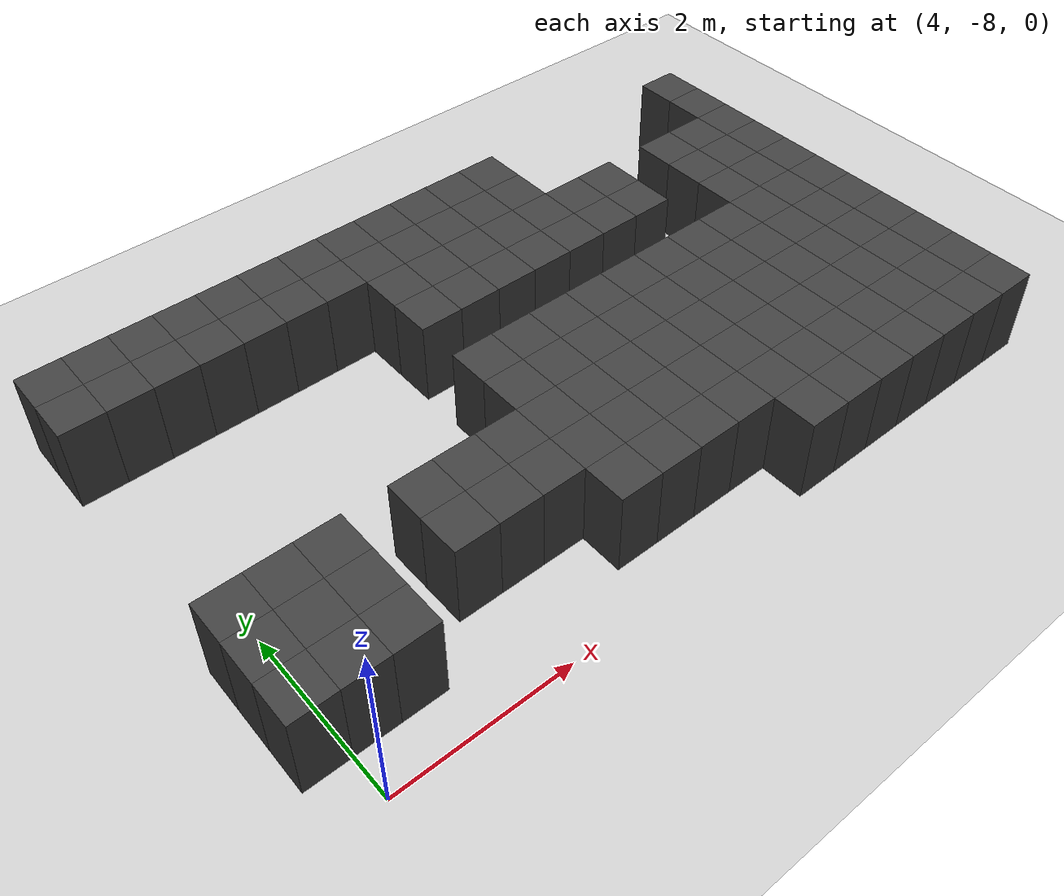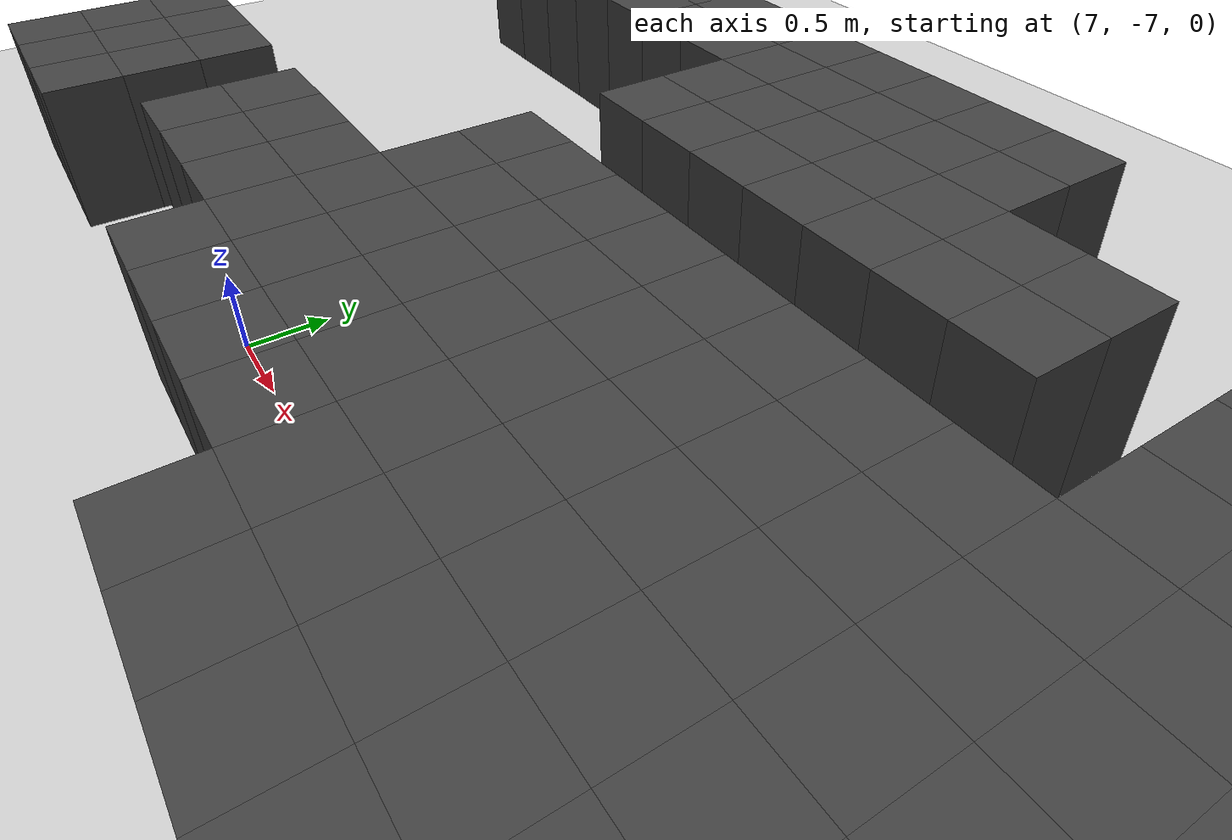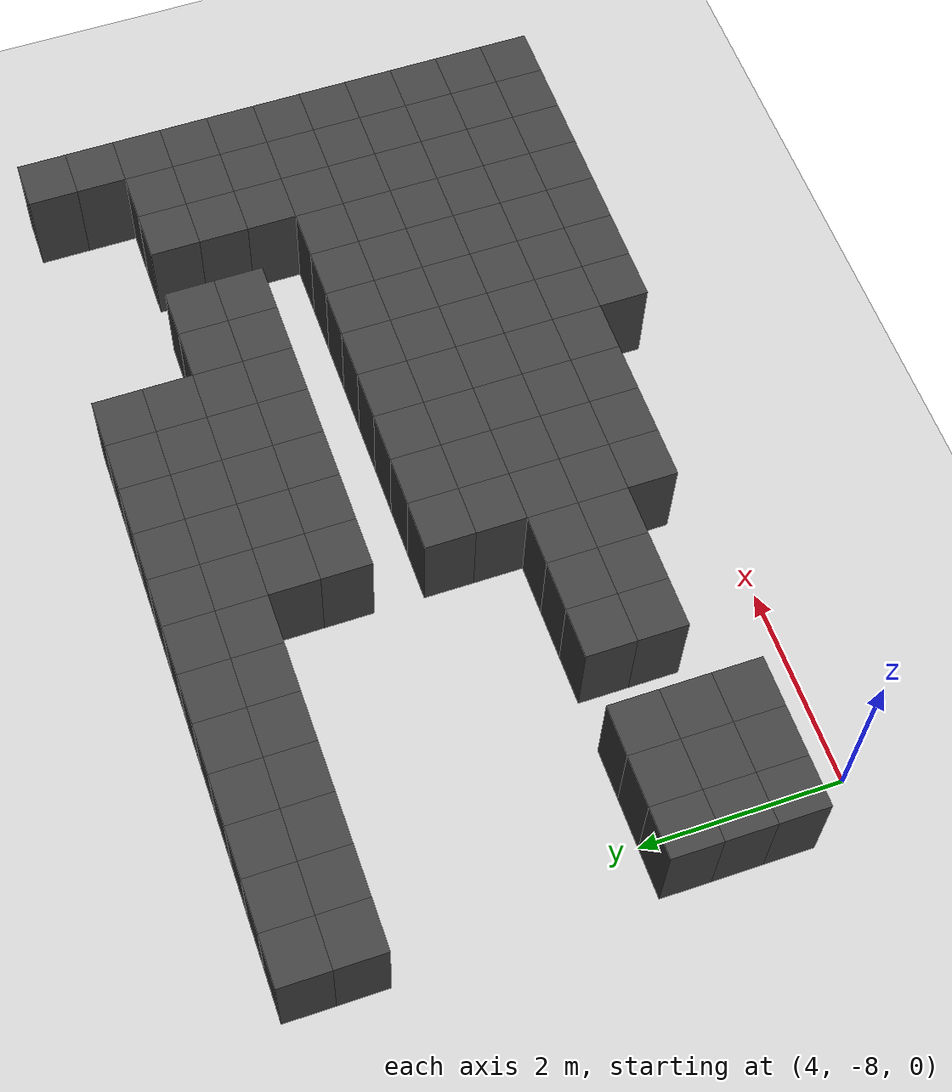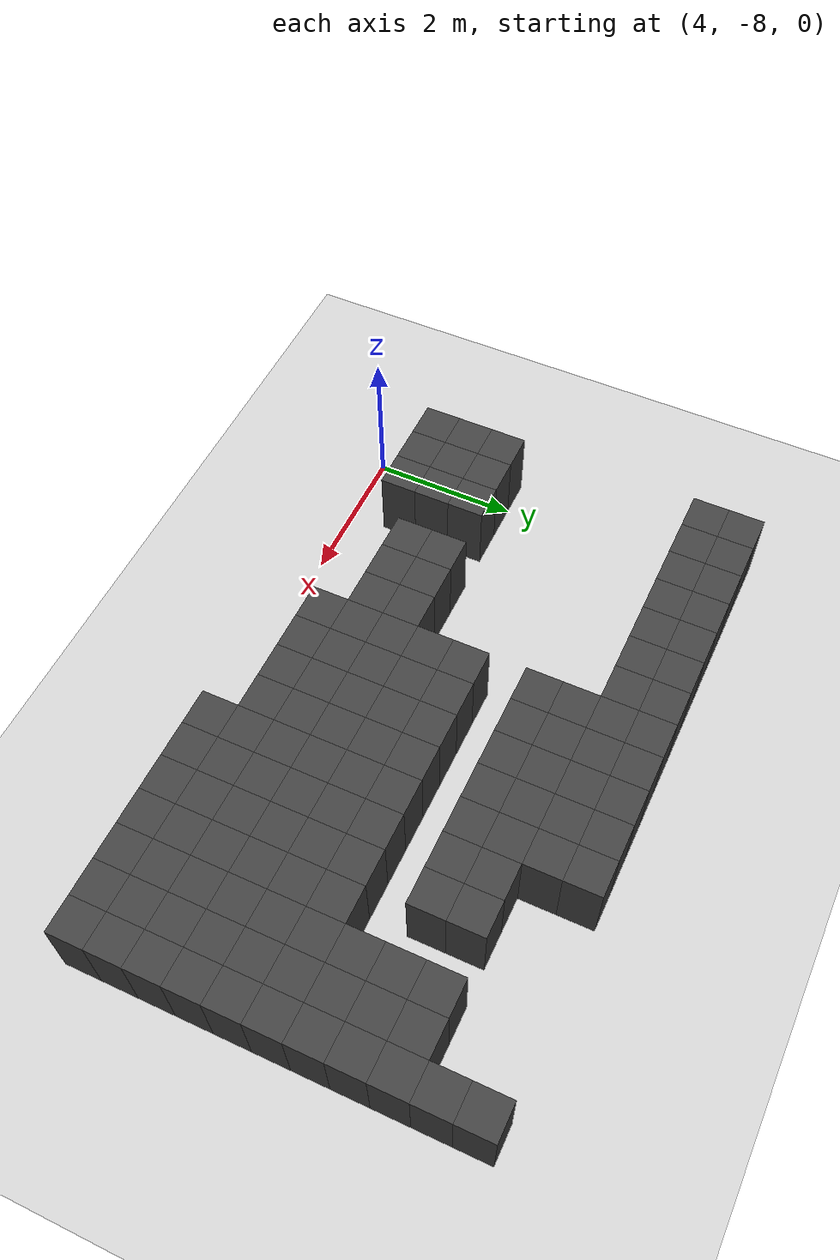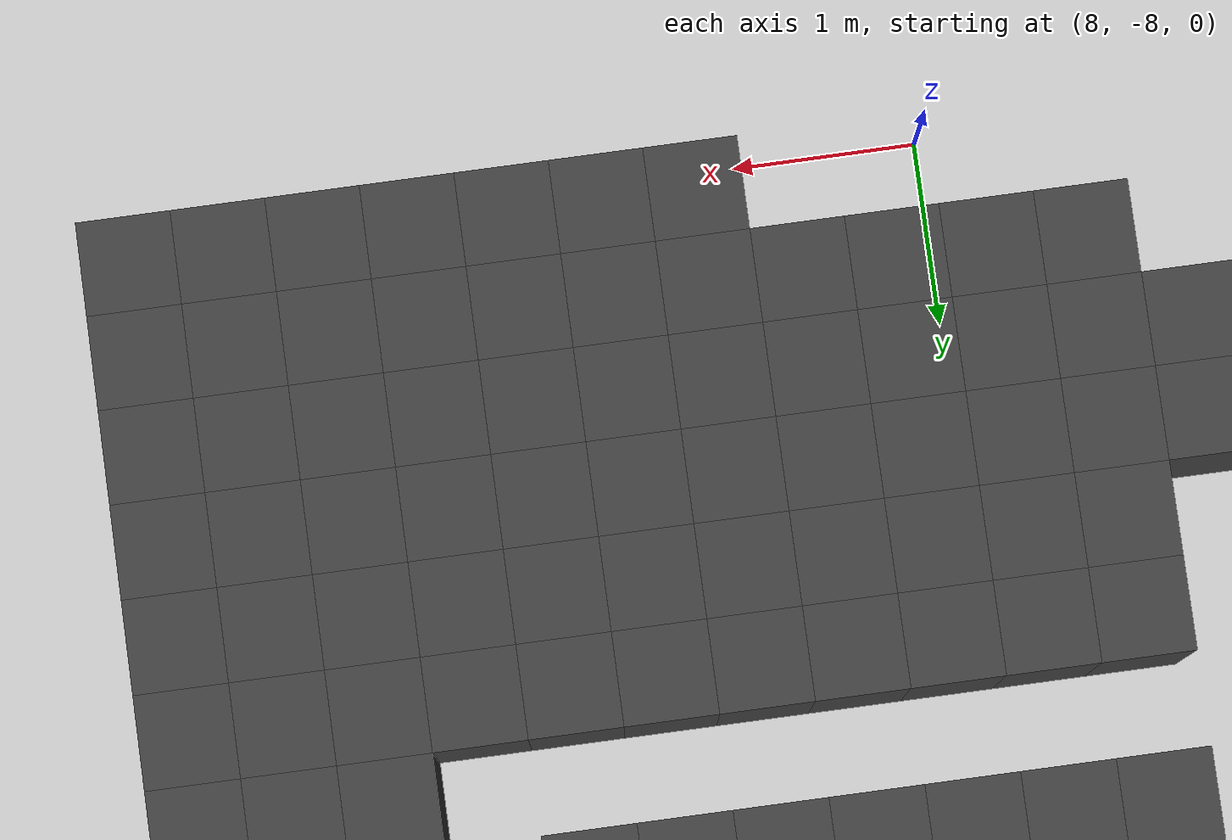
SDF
<sdf version="1.7">
 <world name="map_14190">
  <model name="ground_plane">
   <static>true</static>
   <link name="link">
    <collision name="collision">
     <geometry><plane><normal>0 0 1</normal><size>200 200</size></plane></geometry>
    </collision>
    <visual name="visual">
     <geometry><plane><normal>0 0 1</normal><size>200 200</size></plane></geometry>
     <material><ambient>0.8 0.8 0.8 1</ambient><diffuse>0.8 0.8 0.8 1</diffuse></material>
    </visual>
   </link>
  </model>
  <model name="maze_environment">
   <static>true</static>
   <link name="wall_1069">
    <pose>3.750 -2.750 0.500 0 0 0</pose>
    <collision name="col"><geometry><box><size>0.5 0.5 1.0</size></box></geometry></collision>
    <visual name="vis">
     <geometry><box><size>0.5 0.5 1.0</size></box></geometry>
     <material><ambient>0.15 0.15 0.15 1</ambient><diffuse>0.25 0.25 0.25 1</diffuse></material>
    </visual>
   </link>
   <link name="wall_1070">
    <pose>4.250 -2.750 0.500 0 0 0</pose>
    <collision name="col"><geometry><box><size>0.5 0.5 1.0</size></box></geometry></collision>
    <visual name="vis">
     <geometry><box><size>0.5 0.5 1.0</size></box></geometry>
     <material><ambient>0.15 0.15 0.15 1</ambient><diffuse>0.25 0.25 0.25 1</diffuse></material>
    </visual>
   </link>
   <link name="wall_1071">
    <pose>4.750 -2.750 0.500 0 0 0</pose>
    <collision name="col"><geometry><box><size>0.5 0.5 1.0</size></box></geometry></collision>
    <visual name="vis">
     <geometry><box><size>0.5 0.5 1.0</size></box></geometry>
     <material><ambient>0.15 0.15 0.15 1</ambient><diffuse>0.25 0.25 0.25 1</diffuse></material>
    </visual>
   </link>
   <link name="wall_1072">
    <pose>5.250 -2.750 0.500 0 0 0</pose>
    <collision name="col"><geometry><box><size>0.5 0.5 1.0</size></box></geometry></collision>
    <visual name="vis">
     <geometry><box><size>0.5 0.5 1.0</size></box></geometry>
     <material><ambient>0.15 0.15 0.15 1</ambient><diffuse>0.25 0.25 0.25 1</diffuse></material>
    </visual>
   </link>
   <link name="wall_1073">
    <pose>5.750 -2.750 0.500 0 0 0</pose>
    <collision name="col"><geometry><box><size>0.5 0.5 1.0</size></box></geometry></collision>
    <visual name="vis">
     <geometry><box><size>0.5 0.5 1.0</size></box></geometry>
     <material><ambient>0.15 0.15 0.15 1</ambient><diffuse>0.25 0.25 0.25 1</diffuse></material>
    </visual>
   </link>
   <link name="wall_1074">
    <pose>6.250 -2.750 0.500 0 0 0</pose>
    <collision name="col"><geometry><box><size>0.5 0.5 1.0</size></box></geometry></collision>
    <visual name="vis">
     <geometry><box><size>0.5 0.5 1.0</size></box></geometry>
     <material><ambient>0.15 0.15 0.15 1</ambient><diffuse>0.25 0.25 0.25 1</diffuse></material>
    </visual>
   </link>
   <link name="wall_1075">
    <pose>6.750 -2.750 0.500 0 0 0</pose>
    <collision name="col"><geometry><box><size>0.5 0.5 1.0</size></box></geometry></collision>
    <visual name="vis">
     <geometry><box><size>0.5 0.5 1.0</size></box></geometry>
     <material><ambient>0.15 0.15 0.15 1</ambient><diffuse>0.25 0.25 0.25 1</diffuse></material>
    </visual>
   </link>
   <link name="wall_1076">
    <pose>7.250 -2.750 0.500 0 0 0</pose>
    <collision name="col"><geometry><box><size>0.5 0.5 1.0</size></box></geometry></collision>
    <visual name="vis">
     <geometry><box><size>0.5 0.5 1.0</size></box></geometry>
     <material><ambient>0.15 0.15 0.15 1</ambient><diffuse>0.25 0.25 0.25 1</diffuse></material>
    </visual>
   </link>
   <link name="wall_1077">
    <pose>7.750 -2.750 0.500 0 0 0</pose>
    <collision name="col"><geometry><box><size>0.5 0.5 1.0</size></box></geometry></collision>
    <visual name="vis">
     <geometry><box><size>0.5 0.5 1.0</size></box></geometry>
     <material><ambient>0.15 0.15 0.15 1</ambient><diffuse>0.25 0.25 0.25 1</diffuse></material>
    </visual>
   </link>
   <link name="wall_1078">
    <pose>8.250 -2.750 0.500 0 0 0</pose>
    <collision name="col"><geometry><box><size>0.5 0.5 1.0</size></box></geometry></collision>
    <visual name="vis">
     <geometry><box><size>0.5 0.5 1.0</size></box></geometry>
     <material><ambient>0.15 0.15 0.15 1</ambient><diffuse>0.25 0.25 0.25 1</diffuse></material>
    </visual>
   </link>
   <link name="wall_1079">
    <pose>8.750 -2.750 0.500 0 0 0</pose>
    <collision name="col"><geometry><box><size>0.5 0.5 1.0</size></box></geometry></collision>
    <visual name="vis">
     <geometry><box><size>0.5 0.5 1.0</size></box></geometry>
     <material><ambient>0.15 0.15 0.15 1</ambient><diffuse>0.25 0.25 0.25 1</diffuse></material>
    </visual>
   </link>
   <link name="wall_1080">
    <pose>9.250 -2.750 0.500 0 0 0</pose>
    <collision name="col"><geometry><box><size>0.5 0.5 1.0</size></box></geometry></collision>
    <visual name="vis">
     <geometry><box><size>0.5 0.5 1.0</size></box></geometry>
     <material><ambient>0.15 0.15 0.15 1</ambient><diffuse>0.25 0.25 0.25 1</diffuse></material>
    </visual>
   </link>
   <link name="wall_1081">
    <pose>12.250 -2.750 0.500 0 0 0</pose>
    <collision name="col"><geometry><box><size>0.5 0.5 1.0</size></box></geometry></collision>
    <visual name="vis">
     <geometry><box><size>0.5 0.5 1.0</size></box></geometry>
     <material><ambient>0.15 0.15 0.15 1</ambient><diffuse>0.25 0.25 0.25 1</diffuse></material>
    </visual>
   </link>
   <link name="wall_1103">
    <pose>3.750 -3.250 0.500 0 0 0</pose>
    <collision name="col"><geometry><box><size>0.5 0.5 1.0</size></box></geometry></collision>
    <visual name="vis">
     <geometry><box><size>0.5 0.5 1.0</size></box></geometry>
     <material><ambient>0.15 0.15 0.15 1</ambient><diffuse>0.25 0.25 0.25 1</diffuse></material>
    </visual>
   </link>
   <link name="wall_1104">
    <pose>4.250 -3.250 0.500 0 0 0</pose>
    <collision name="col"><geometry><box><size>0.5 0.5 1.0</size></box></geometry></collision>
    <visual name="vis">
     <geometry><box><size>0.5 0.5 1.0</size></box></geometry>
     <material><ambient>0.15 0.15 0.15 1</ambient><diffuse>0.25 0.25 0.25 1</diffuse></material>
    </visual>
   </link>
   <link name="wall_1105">
    <pose>4.750 -3.250 0.500 0 0 0</pose>
    <collision name="col"><geometry><box><size>0.5 0.5 1.0</size></box></geometry></collision>
    <visual name="vis">
     <geometry><box><size>0.5 0.5 1.0</size></box></geometry>
     <material><ambient>0.15 0.15 0.15 1</ambient><diffuse>0.25 0.25 0.25 1</diffuse></material>
    </visual>
   </link>
   <link name="wall_1106">
    <pose>5.250 -3.250 0.500 0 0 0</pose>
    <collision name="col"><geometry><box><size>0.5 0.5 1.0</size></box></geometry></collision>
    <visual name="vis">
     <geometry><box><size>0.5 0.5 1.0</size></box></geometry>
     <material><ambient>0.15 0.15 0.15 1</ambient><diffuse>0.25 0.25 0.25 1</diffuse></material>
    </visual>
   </link>
   <link name="wall_1107">
    <pose>5.750 -3.250 0.500 0 0 0</pose>
    <collision name="col"><geometry><box><size>0.5 0.5 1.0</size></box></geometry></collision>
    <visual name="vis">
     <geometry><box><size>0.5 0.5 1.0</size></box></geometry>
     <material><ambient>0.15 0.15 0.15 1</ambient><diffuse>0.25 0.25 0.25 1</diffuse></material>
    </visual>
   </link>
   <link name="wall_1108">
    <pose>6.250 -3.250 0.500 0 0 0</pose>
    <collision name="col"><geometry><box><size>0.5 0.5 1.0</size></box></geometry></collision>
    <visual name="vis">
     <geometry><box><size>0.5 0.5 1.0</size></box></geometry>
     <material><ambient>0.15 0.15 0.15 1</ambient><diffuse>0.25 0.25 0.25 1</diffuse></material>
    </visual>
   </link>
   <link name="wall_1109">
    <pose>6.750 -3.250 0.500 0 0 0</pose>
    <collision name="col"><geometry><box><size>0.5 0.5 1.0</size></box></geometry></collision>
    <visual name="vis">
     <geometry><box><size>0.5 0.5 1.0</size></box></geometry>
     <material><ambient>0.15 0.15 0.15 1</ambient><diffuse>0.25 0.25 0.25 1</diffuse></material>
    </visual>
   </link>
   <link name="wall_1110">
    <pose>7.250 -3.250 0.500 0 0 0</pose>
    <collision name="col"><geometry><box><size>0.5 0.5 1.0</size></box></geometry></collision>
    <visual name="vis">
     <geometry><box><size>0.5 0.5 1.0</size></box></geometry>
     <material><ambient>0.15 0.15 0.15 1</ambient><diffuse>0.25 0.25 0.25 1</diffuse></material>
    </visual>
   </link>
   <link name="wall_1111">
    <pose>7.750 -3.250 0.500 0 0 0</pose>
    <collision name="col"><geometry><box><size>0.5 0.5 1.0</size></box></geometry></collision>
    <visual name="vis">
     <geometry><box><size>0.5 0.5 1.0</size></box></geometry>
     <material><ambient>0.15 0.15 0.15 1</ambient><diffuse>0.25 0.25 0.25 1</diffuse></material>
    </visual>
   </link>
   <link name="wall_1112">
    <pose>8.250 -3.250 0.500 0 0 0</pose>
    <collision name="col"><geometry><box><size>0.5 0.5 1.0</size></box></geometry></collision>
    <visual name="vis">
     <geometry><box><size>0.5 0.5 1.0</size></box></geometry>
     <material><ambient>0.15 0.15 0.15 1</ambient><diffuse>0.25 0.25 0.25 1</diffuse></material>
    </visual>
   </link>
   <link name="wall_1113">
    <pose>8.750 -3.250 0.500 0 0 0</pose>
    <collision name="col"><geometry><box><size>0.5 0.5 1.0</size></box></geometry></collision>
    <visual name="vis">
     <geometry><box><size>0.5 0.5 1.0</size></box></geometry>
     <material><ambient>0.15 0.15 0.15 1</ambient><diffuse>0.25 0.25 0.25 1</diffuse></material>
    </visual>
   </link>
   <link name="wall_1114">
    <pose>9.250 -3.250 0.500 0 0 0</pose>
    <collision name="col"><geometry><box><size>0.5 0.5 1.0</size></box></geometry></collision>
    <visual name="vis">
     <geometry><box><size>0.5 0.5 1.0</size></box></geometry>
     <material><ambient>0.15 0.15 0.15 1</ambient><diffuse>0.25 0.25 0.25 1</diffuse></material>
    </visual>
   </link>
   <link name="wall_1115">
    <pose>12.250 -3.250 0.500 0 0 0</pose>
    <collision name="col"><geometry><box><size>0.5 0.5 1.0</size></box></geometry></collision>
    <visual name="vis">
     <geometry><box><size>0.5 0.5 1.0</size></box></geometry>
     <material><ambient>0.15 0.15 0.15 1</ambient><diffuse>0.25 0.25 0.25 1</diffuse></material>
    </visual>
   </link>
   <link name="wall_1141">
    <pose>7.250 -3.750 0.500 0 0 0</pose>
    <collision name="col"><geometry><box><size>0.5 0.5 1.0</size></box></geometry></collision>
    <visual name="vis">
     <geometry><box><size>0.5 0.5 1.0</size></box></geometry>
     <material><ambient>0.15 0.15 0.15 1</ambient><diffuse>0.25 0.25 0.25 1</diffuse></material>
    </visual>
   </link>
   <link name="wall_1142">
    <pose>7.750 -3.750 0.500 0 0 0</pose>
    <collision name="col"><geometry><box><size>0.5 0.5 1.0</size></box></geometry></collision>
    <visual name="vis">
     <geometry><box><size>0.5 0.5 1.0</size></box></geometry>
     <material><ambient>0.15 0.15 0.15 1</ambient><diffuse>0.25 0.25 0.25 1</diffuse></material>
    </visual>
   </link>
   <link name="wall_1143">
    <pose>8.250 -3.750 0.500 0 0 0</pose>
    <collision name="col"><geometry><box><size>0.5 0.5 1.0</size></box></geometry></collision>
    <visual name="vis">
     <geometry><box><size>0.5 0.5 1.0</size></box></geometry>
     <material><ambient>0.15 0.15 0.15 1</ambient><diffuse>0.25 0.25 0.25 1</diffuse></material>
    </visual>
   </link>
   <link name="wall_1144">
    <pose>8.750 -3.750 0.500 0 0 0</pose>
    <collision name="col"><geometry><box><size>0.5 0.5 1.0</size></box></geometry></collision>
    <visual name="vis">
     <geometry><box><size>0.5 0.5 1.0</size></box></geometry>
     <material><ambient>0.15 0.15 0.15 1</ambient><diffuse>0.25 0.25 0.25 1</diffuse></material>
    </visual>
   </link>
   <link name="wall_1145">
    <pose>9.250 -3.750 0.500 0 0 0</pose>
    <collision name="col"><geometry><box><size>0.5 0.5 1.0</size></box></geometry></collision>
    <visual name="vis">
     <geometry><box><size>0.5 0.5 1.0</size></box></geometry>
     <material><ambient>0.15 0.15 0.15 1</ambient><diffuse>0.25 0.25 0.25 1</diffuse></material>
    </visual>
   </link>
   <link name="wall_1146">
    <pose>9.750 -3.750 0.500 0 0 0</pose>
    <collision name="col"><geometry><box><size>0.5 0.5 1.0</size></box></geometry></collision>
    <visual name="vis">
     <geometry><box><size>0.5 0.5 1.0</size></box></geometry>
     <material><ambient>0.15 0.15 0.15 1</ambient><diffuse>0.25 0.25 0.25 1</diffuse></material>
    </visual>
   </link>
   <link name="wall_1147">
    <pose>10.250 -3.750 0.500 0 0 0</pose>
    <collision name="col"><geometry><box><size>0.5 0.5 1.0</size></box></geometry></collision>
    <visual name="vis">
     <geometry><box><size>0.5 0.5 1.0</size></box></geometry>
     <material><ambient>0.15 0.15 0.15 1</ambient><diffuse>0.25 0.25 0.25 1</diffuse></material>
    </visual>
   </link>
   <link name="wall_1148">
    <pose>11.250 -3.750 0.500 0 0 0</pose>
    <collision name="col"><geometry><box><size>0.5 0.5 1.0</size></box></geometry></collision>
    <visual name="vis">
     <geometry><box><size>0.5 0.5 1.0</size></box></geometry>
     <material><ambient>0.15 0.15 0.15 1</ambient><diffuse>0.25 0.25 0.25 1</diffuse></material>
    </visual>
   </link>
   <link name="wall_1149">
    <pose>11.750 -3.750 0.500 0 0 0</pose>
    <collision name="col"><geometry><box><size>0.5 0.5 1.0</size></box></geometry></collision>
    <visual name="vis">
     <geometry><box><size>0.5 0.5 1.0</size></box></geometry>
     <material><ambient>0.15 0.15 0.15 1</ambient><diffuse>0.25 0.25 0.25 1</diffuse></material>
    </visual>
   </link>
   <link name="wall_1150">
    <pose>12.250 -3.750 0.500 0 0 0</pose>
    <collision name="col"><geometry><box><size>0.5 0.5 1.0</size></box></geometry></collision>
    <visual name="vis">
     <geometry><box><size>0.5 0.5 1.0</size></box></geometry>
     <material><ambient>0.15 0.15 0.15 1</ambient><diffuse>0.25 0.25 0.25 1</diffuse></material>
    </visual>
   </link>
   <link name="wall_1182">
    <pose>7.250 -4.250 0.500 0 0 0</pose>
    <collision name="col"><geometry><box><size>0.5 0.5 1.0</size></box></geometry></collision>
    <visual name="vis">
     <geometry><box><size>0.5 0.5 1.0</size></box></geometry>
     <material><ambient>0.15 0.15 0.15 1</ambient><diffuse>0.25 0.25 0.25 1</diffuse></material>
    </visual>
   </link>
   <link name="wall_1183">
    <pose>7.750 -4.250 0.500 0 0 0</pose>
    <collision name="col"><geometry><box><size>0.5 0.5 1.0</size></box></geometry></collision>
    <visual name="vis">
     <geometry><box><size>0.5 0.5 1.0</size></box></geometry>
     <material><ambient>0.15 0.15 0.15 1</ambient><diffuse>0.25 0.25 0.25 1</diffuse></material>
    </visual>
   </link>
   <link name="wall_1184">
    <pose>8.250 -4.250 0.500 0 0 0</pose>
    <collision name="col"><geometry><box><size>0.5 0.5 1.0</size></box></geometry></collision>
    <visual name="vis">
     <geometry><box><size>0.5 0.5 1.0</size></box></geometry>
     <material><ambient>0.15 0.15 0.15 1</ambient><diffuse>0.25 0.25 0.25 1</diffuse></material>
    </visual>
   </link>
   <link name="wall_1185">
    <pose>8.750 -4.250 0.500 0 0 0</pose>
    <collision name="col"><geometry><box><size>0.5 0.5 1.0</size></box></geometry></collision>
    <visual name="vis">
     <geometry><box><size>0.5 0.5 1.0</size></box></geometry>
     <material><ambient>0.15 0.15 0.15 1</ambient><diffuse>0.25 0.25 0.25 1</diffuse></material>
    </visual>
   </link>
   <link name="wall_1186">
    <pose>9.250 -4.250 0.500 0 0 0</pose>
    <collision name="col"><geometry><box><size>0.5 0.5 1.0</size></box></geometry></collision>
    <visual name="vis">
     <geometry><box><size>0.5 0.5 1.0</size></box></geometry>
     <material><ambient>0.15 0.15 0.15 1</ambient><diffuse>0.25 0.25 0.25 1</diffuse></material>
    </visual>
   </link>
   <link name="wall_1187">
    <pose>9.750 -4.250 0.500 0 0 0</pose>
    <collision name="col"><geometry><box><size>0.5 0.5 1.0</size></box></geometry></collision>
    <visual name="vis">
     <geometry><box><size>0.5 0.5 1.0</size></box></geometry>
     <material><ambient>0.15 0.15 0.15 1</ambient><diffuse>0.25 0.25 0.25 1</diffuse></material>
    </visual>
   </link>
   <link name="wall_1188">
    <pose>10.250 -4.250 0.500 0 0 0</pose>
    <collision name="col"><geometry><box><size>0.5 0.5 1.0</size></box></geometry></collision>
    <visual name="vis">
     <geometry><box><size>0.5 0.5 1.0</size></box></geometry>
     <material><ambient>0.15 0.15 0.15 1</ambient><diffuse>0.25 0.25 0.25 1</diffuse></material>
    </visual>
   </link>
   <link name="wall_1189">
    <pose>11.250 -4.250 0.500 0 0 0</pose>
    <collision name="col"><geometry><box><size>0.5 0.5 1.0</size></box></geometry></collision>
    <visual name="vis">
     <geometry><box><size>0.5 0.5 1.0</size></box></geometry>
     <material><ambient>0.15 0.15 0.15 1</ambient><diffuse>0.25 0.25 0.25 1</diffuse></material>
    </visual>
   </link>
   <link name="wall_1190">
    <pose>11.750 -4.250 0.500 0 0 0</pose>
    <collision name="col"><geometry><box><size>0.5 0.5 1.0</size></box></geometry></collision>
    <visual name="vis">
     <geometry><box><size>0.5 0.5 1.0</size></box></geometry>
     <material><ambient>0.15 0.15 0.15 1</ambient><diffuse>0.25 0.25 0.25 1</diffuse></material>
    </visual>
   </link>
   <link name="wall_1191">
    <pose>12.250 -4.250 0.500 0 0 0</pose>
    <collision name="col"><geometry><box><size>0.5 0.5 1.0</size></box></geometry></collision>
    <visual name="vis">
     <geometry><box><size>0.5 0.5 1.0</size></box></geometry>
     <material><ambient>0.15 0.15 0.15 1</ambient><diffuse>0.25 0.25 0.25 1</diffuse></material>
    </visual>
   </link>
   <link name="wall_1223">
    <pose>11.250 -4.750 0.500 0 0 0</pose>
    <collision name="col"><geometry><box><size>0.5 0.5 1.0</size></box></geometry></collision>
    <visual name="vis">
     <geometry><box><size>0.5 0.5 1.0</size></box></geometry>
     <material><ambient>0.15 0.15 0.15 1</ambient><diffuse>0.25 0.25 0.25 1</diffuse></material>
    </visual>
   </link>
   <link name="wall_1224">
    <pose>11.750 -4.750 0.500 0 0 0</pose>
    <collision name="col"><geometry><box><size>0.5 0.5 1.0</size></box></geometry></collision>
    <visual name="vis">
     <geometry><box><size>0.5 0.5 1.0</size></box></geometry>
     <material><ambient>0.15 0.15 0.15 1</ambient><diffuse>0.25 0.25 0.25 1</diffuse></material>
    </visual>
   </link>
   <link name="wall_1225">
    <pose>12.250 -4.750 0.500 0 0 0</pose>
    <collision name="col"><geometry><box><size>0.5 0.5 1.0</size></box></geometry></collision>
    <visual name="vis">
     <geometry><box><size>0.5 0.5 1.0</size></box></geometry>
     <material><ambient>0.15 0.15 0.15 1</ambient><diffuse>0.25 0.25 0.25 1</diffuse></material>
    </visual>
   </link>
   <link name="wall_1250">
    <pose>7.250 -5.250 0.500 0 0 0</pose>
    <collision name="col"><geometry><box><size>0.5 0.5 1.0</size></box></geometry></collision>
    <visual name="vis">
     <geometry><box><size>0.5 0.5 1.0</size></box></geometry>
     <material><ambient>0.15 0.15 0.15 1</ambient><diffuse>0.25 0.25 0.25 1</diffuse></material>
    </visual>
   </link>
   <link name="wall_1251">
    <pose>7.750 -5.250 0.500 0 0 0</pose>
    <collision name="col"><geometry><box><size>0.5 0.5 1.0</size></box></geometry></collision>
    <visual name="vis">
     <geometry><box><size>0.5 0.5 1.0</size></box></geometry>
     <material><ambient>0.15 0.15 0.15 1</ambient><diffuse>0.25 0.25 0.25 1</diffuse></material>
    </visual>
   </link>
   <link name="wall_1252">
    <pose>8.250 -5.250 0.500 0 0 0</pose>
    <collision name="col"><geometry><box><size>0.5 0.5 1.0</size></box></geometry></collision>
    <visual name="vis">
     <geometry><box><size>0.5 0.5 1.0</size></box></geometry>
     <material><ambient>0.15 0.15 0.15 1</ambient><diffuse>0.25 0.25 0.25 1</diffuse></material>
    </visual>
   </link>
   <link name="wall_1253">
    <pose>8.750 -5.250 0.500 0 0 0</pose>
    <collision name="col"><geometry><box><size>0.5 0.5 1.0</size></box></geometry></collision>
    <visual name="vis">
     <geometry><box><size>0.5 0.5 1.0</size></box></geometry>
     <material><ambient>0.15 0.15 0.15 1</ambient><diffuse>0.25 0.25 0.25 1</diffuse></material>
    </visual>
   </link>
   <link name="wall_1254">
    <pose>9.250 -5.250 0.500 0 0 0</pose>
    <collision name="col"><geometry><box><size>0.5 0.5 1.0</size></box></geometry></collision>
    <visual name="vis">
     <geometry><box><size>0.5 0.5 1.0</size></box></geometry>
     <material><ambient>0.15 0.15 0.15 1</ambient><diffuse>0.25 0.25 0.25 1</diffuse></material>
    </visual>
   </link>
   <link name="wall_1255">
    <pose>9.750 -5.250 0.500 0 0 0</pose>
    <collision name="col"><geometry><box><size>0.5 0.5 1.0</size></box></geometry></collision>
    <visual name="vis">
     <geometry><box><size>0.5 0.5 1.0</size></box></geometry>
     <material><ambient>0.15 0.15 0.15 1</ambient><diffuse>0.25 0.25 0.25 1</diffuse></material>
    </visual>
   </link>
   <link name="wall_1256">
    <pose>10.250 -5.250 0.500 0 0 0</pose>
    <collision name="col"><geometry><box><size>0.5 0.5 1.0</size></box></geometry></collision>
    <visual name="vis">
     <geometry><box><size>0.5 0.5 1.0</size></box></geometry>
     <material><ambient>0.15 0.15 0.15 1</ambient><diffuse>0.25 0.25 0.25 1</diffuse></material>
    </visual>
   </link>
   <link name="wall_1257">
    <pose>10.750 -5.250 0.500 0 0 0</pose>
    <collision name="col"><geometry><box><size>0.5 0.5 1.0</size></box></geometry></collision>
    <visual name="vis">
     <geometry><box><size>0.5 0.5 1.0</size></box></geometry>
     <material><ambient>0.15 0.15 0.15 1</ambient><diffuse>0.25 0.25 0.25 1</diffuse></material>
    </visual>
   </link>
   <link name="wall_1258">
    <pose>11.250 -5.250 0.500 0 0 0</pose>
    <collision name="col"><geometry><box><size>0.5 0.5 1.0</size></box></geometry></collision>
    <visual name="vis">
     <geometry><box><size>0.5 0.5 1.0</size></box></geometry>
     <material><ambient>0.15 0.15 0.15 1</ambient><diffuse>0.25 0.25 0.25 1</diffuse></material>
    </visual>
   </link>
   <link name="wall_1259">
    <pose>11.750 -5.250 0.500 0 0 0</pose>
    <collision name="col"><geometry><box><size>0.5 0.5 1.0</size></box></geometry></collision>
    <visual name="vis">
     <geometry><box><size>0.5 0.5 1.0</size></box></geometry>
     <material><ambient>0.15 0.15 0.15 1</ambient><diffuse>0.25 0.25 0.25 1</diffuse></material>
    </visual>
   </link>
   <link name="wall_1260">
    <pose>12.250 -5.250 0.500 0 0 0</pose>
    <collision name="col"><geometry><box><size>0.5 0.5 1.0</size></box></geometry></collision>
    <visual name="vis">
     <geometry><box><size>0.5 0.5 1.0</size></box></geometry>
     <material><ambient>0.15 0.15 0.15 1</ambient><diffuse>0.25 0.25 0.25 1</diffuse></material>
    </visual>
   </link>
   <link name="wall_1285">
    <pose>7.250 -5.750 0.500 0 0 0</pose>
    <collision name="col"><geometry><box><size>0.5 0.5 1.0</size></box></geometry></collision>
    <visual name="vis">
     <geometry><box><size>0.5 0.5 1.0</size></box></geometry>
     <material><ambient>0.15 0.15 0.15 1</ambient><diffuse>0.25 0.25 0.25 1</diffuse></material>
    </visual>
   </link>
   <link name="wall_1286">
    <pose>7.750 -5.750 0.500 0 0 0</pose>
    <collision name="col"><geometry><box><size>0.5 0.5 1.0</size></box></geometry></collision>
    <visual name="vis">
     <geometry><box><size>0.5 0.5 1.0</size></box></geometry>
     <material><ambient>0.15 0.15 0.15 1</ambient><diffuse>0.25 0.25 0.25 1</diffuse></material>
    </visual>
   </link>
   <link name="wall_1287">
    <pose>8.250 -5.750 0.500 0 0 0</pose>
    <collision name="col"><geometry><box><size>0.5 0.5 1.0</size></box></geometry></collision>
    <visual name="vis">
     <geometry><box><size>0.5 0.5 1.0</size></box></geometry>
     <material><ambient>0.15 0.15 0.15 1</ambient><diffuse>0.25 0.25 0.25 1</diffuse></material>
    </visual>
   </link>
   <link name="wall_1288">
    <pose>8.750 -5.750 0.500 0 0 0</pose>
    <collision name="col"><geometry><box><size>0.5 0.5 1.0</size></box></geometry></collision>
    <visual name="vis">
     <geometry><box><size>0.5 0.5 1.0</size></box></geometry>
     <material><ambient>0.15 0.15 0.15 1</ambient><diffuse>0.25 0.25 0.25 1</diffuse></material>
    </visual>
   </link>
   <link name="wall_1289">
    <pose>9.250 -5.750 0.500 0 0 0</pose>
    <collision name="col"><geometry><box><size>0.5 0.5 1.0</size></box></geometry></collision>
    <visual name="vis">
     <geometry><box><size>0.5 0.5 1.0</size></box></geometry>
     <material><ambient>0.15 0.15 0.15 1</ambient><diffuse>0.25 0.25 0.25 1</diffuse></material>
    </visual>
   </link>
   <link name="wall_1290">
    <pose>9.750 -5.750 0.500 0 0 0</pose>
    <collision name="col"><geometry><box><size>0.5 0.5 1.0</size></box></geometry></collision>
    <visual name="vis">
     <geometry><box><size>0.5 0.5 1.0</size></box></geometry>
     <material><ambient>0.15 0.15 0.15 1</ambient><diffuse>0.25 0.25 0.25 1</diffuse></material>
    </visual>
   </link>
   <link name="wall_1291">
    <pose>10.250 -5.750 0.500 0 0 0</pose>
    <collision name="col"><geometry><box><size>0.5 0.5 1.0</size></box></geometry></collision>
    <visual name="vis">
     <geometry><box><size>0.5 0.5 1.0</size></box></geometry>
     <material><ambient>0.15 0.15 0.15 1</ambient><diffuse>0.25 0.25 0.25 1</diffuse></material>
    </visual>
   </link>
   <link name="wall_1292">
    <pose>10.750 -5.750 0.500 0 0 0</pose>
    <collision name="col"><geometry><box><size>0.5 0.5 1.0</size></box></geometry></collision>
    <visual name="vis">
     <geometry><box><size>0.5 0.5 1.0</size></box></geometry>
     <material><ambient>0.15 0.15 0.15 1</ambient><diffuse>0.25 0.25 0.25 1</diffuse></material>
    </visual>
   </link>
   <link name="wall_1293">
    <pose>11.250 -5.750 0.500 0 0 0</pose>
    <collision name="col"><geometry><box><size>0.5 0.5 1.0</size></box></geometry></collision>
    <visual name="vis">
     <geometry><box><size>0.5 0.5 1.0</size></box></geometry>
     <material><ambient>0.15 0.15 0.15 1</ambient><diffuse>0.25 0.25 0.25 1</diffuse></material>
    </visual>
   </link>
   <link name="wall_1294">
    <pose>11.750 -5.750 0.500 0 0 0</pose>
    <collision name="col"><geometry><box><size>0.5 0.5 1.0</size></box></geometry></collision>
    <visual name="vis">
     <geometry><box><size>0.5 0.5 1.0</size></box></geometry>
     <material><ambient>0.15 0.15 0.15 1</ambient><diffuse>0.25 0.25 0.25 1</diffuse></material>
    </visual>
   </link>
   <link name="wall_1295">
    <pose>12.250 -5.750 0.500 0 0 0</pose>
    <collision name="col"><geometry><box><size>0.5 0.5 1.0</size></box></geometry></collision>
    <visual name="vis">
     <geometry><box><size>0.5 0.5 1.0</size></box></geometry>
     <material><ambient>0.15 0.15 0.15 1</ambient><diffuse>0.25 0.25 0.25 1</diffuse></material>
    </visual>
   </link>
   <link name="wall_1320">
    <pose>3.750 -6.250 0.500 0 0 0</pose>
    <collision name="col"><geometry><box><size>0.5 0.5 1.0</size></box></geometry></collision>
    <visual name="vis">
     <geometry><box><size>0.5 0.5 1.0</size></box></geometry>
     <material><ambient>0.15 0.15 0.15 1</ambient><diffuse>0.25 0.25 0.25 1</diffuse></material>
    </visual>
   </link>
   <link name="wall_1321">
    <pose>4.250 -6.250 0.500 0 0 0</pose>
    <collision name="col"><geometry><box><size>0.5 0.5 1.0</size></box></geometry></collision>
    <visual name="vis">
     <geometry><box><size>0.5 0.5 1.0</size></box></geometry>
     <material><ambient>0.15 0.15 0.15 1</ambient><diffuse>0.25 0.25 0.25 1</diffuse></material>
    </visual>
   </link>
   <link name="wall_1322">
    <pose>4.750 -6.250 0.500 0 0 0</pose>
    <collision name="col"><geometry><box><size>0.5 0.5 1.0</size></box></geometry></collision>
    <visual name="vis">
     <geometry><box><size>0.5 0.5 1.0</size></box></geometry>
     <material><ambient>0.15 0.15 0.15 1</ambient><diffuse>0.25 0.25 0.25 1</diffuse></material>
    </visual>
   </link>
   <link name="wall_1323">
    <pose>5.750 -6.250 0.500 0 0 0</pose>
    <collision name="col"><geometry><box><size>0.5 0.5 1.0</size></box></geometry></collision>
    <visual name="vis">
     <geometry><box><size>0.5 0.5 1.0</size></box></geometry>
     <material><ambient>0.15 0.15 0.15 1</ambient><diffuse>0.25 0.25 0.25 1</diffuse></material>
    </visual>
   </link>
   <link name="wall_1324">
    <pose>6.250 -6.250 0.500 0 0 0</pose>
    <collision name="col"><geometry><box><size>0.5 0.5 1.0</size></box></geometry></collision>
    <visual name="vis">
     <geometry><box><size>0.5 0.5 1.0</size></box></geometry>
     <material><ambient>0.15 0.15 0.15 1</ambient><diffuse>0.25 0.25 0.25 1</diffuse></material>
    </visual>
   </link>
   <link name="wall_1325">
    <pose>6.750 -6.250 0.500 0 0 0</pose>
    <collision name="col"><geometry><box><size>0.5 0.5 1.0</size></box></geometry></collision>
    <visual name="vis">
     <geometry><box><size>0.5 0.5 1.0</size></box></geometry>
     <material><ambient>0.15 0.15 0.15 1</ambient><diffuse>0.25 0.25 0.25 1</diffuse></material>
    </visual>
   </link>
   <link name="wall_1326">
    <pose>7.250 -6.250 0.500 0 0 0</pose>
    <collision name="col"><geometry><box><size>0.5 0.5 1.0</size></box></geometry></collision>
    <visual name="vis">
     <geometry><box><size>0.5 0.5 1.0</size></box></geometry>
     <material><ambient>0.15 0.15 0.15 1</ambient><diffuse>0.25 0.25 0.25 1</diffuse></material>
    </visual>
   </link>
   <link name="wall_1327">
    <pose>7.750 -6.250 0.500 0 0 0</pose>
    <collision name="col"><geometry><box><size>0.5 0.5 1.0</size></box></geometry></collision>
    <visual name="vis">
     <geometry><box><size>0.5 0.5 1.0</size></box></geometry>
     <material><ambient>0.15 0.15 0.15 1</ambient><diffuse>0.25 0.25 0.25 1</diffuse></material>
    </visual>
   </link>
   <link name="wall_1328">
    <pose>8.250 -6.250 0.500 0 0 0</pose>
    <collision name="col"><geometry><box><size>0.5 0.5 1.0</size></box></geometry></collision>
    <visual name="vis">
     <geometry><box><size>0.5 0.5 1.0</size></box></geometry>
     <material><ambient>0.15 0.15 0.15 1</ambient><diffuse>0.25 0.25 0.25 1</diffuse></material>
    </visual>
   </link>
   <link name="wall_1329">
    <pose>8.750 -6.250 0.500 0 0 0</pose>
    <collision name="col"><geometry><box><size>0.5 0.5 1.0</size></box></geometry></collision>
    <visual name="vis">
     <geometry><box><size>0.5 0.5 1.0</size></box></geometry>
     <material><ambient>0.15 0.15 0.15 1</ambient><diffuse>0.25 0.25 0.25 1</diffuse></material>
    </visual>
   </link>
   <link name="wall_1330">
    <pose>9.250 -6.250 0.500 0 0 0</pose>
    <collision name="col"><geometry><box><size>0.5 0.5 1.0</size></box></geometry></collision>
    <visual name="vis">
     <geometry><box><size>0.5 0.5 1.0</size></box></geometry>
     <material><ambient>0.15 0.15 0.15 1</ambient><diffuse>0.25 0.25 0.25 1</diffuse></material>
    </visual>
   </link>
   <link name="wall_1331">
    <pose>9.750 -6.250 0.500 0 0 0</pose>
    <collision name="col"><geometry><box><size>0.5 0.5 1.0</size></box></geometry></collision>
    <visual name="vis">
     <geometry><box><size>0.5 0.5 1.0</size></box></geometry>
     <material><ambient>0.15 0.15 0.15 1</ambient><diffuse>0.25 0.25 0.25 1</diffuse></material>
    </visual>
   </link>
   <link name="wall_1332">
    <pose>10.250 -6.250 0.500 0 0 0</pose>
    <collision name="col"><geometry><box><size>0.5 0.5 1.0</size></box></geometry></collision>
    <visual name="vis">
     <geometry><box><size>0.5 0.5 1.0</size></box></geometry>
     <material><ambient>0.15 0.15 0.15 1</ambient><diffuse>0.25 0.25 0.25 1</diffuse></material>
    </visual>
   </link>
   <link name="wall_1333">
    <pose>10.750 -6.250 0.500 0 0 0</pose>
    <collision name="col"><geometry><box><size>0.5 0.5 1.0</size></box></geometry></collision>
    <visual name="vis">
     <geometry><box><size>0.5 0.5 1.0</size></box></geometry>
     <material><ambient>0.15 0.15 0.15 1</ambient><diffuse>0.25 0.25 0.25 1</diffuse></material>
    </visual>
   </link>
   <link name="wall_1334">
    <pose>11.250 -6.250 0.500 0 0 0</pose>
    <collision name="col"><geometry><box><size>0.5 0.5 1.0</size></box></geometry></collision>
    <visual name="vis">
     <geometry><box><size>0.5 0.5 1.0</size></box></geometry>
     <material><ambient>0.15 0.15 0.15 1</ambient><diffuse>0.25 0.25 0.25 1</diffuse></material>
    </visual>
   </link>
   <link name="wall_1335">
    <pose>11.750 -6.250 0.500 0 0 0</pose>
    <collision name="col"><geometry><box><size>0.5 0.5 1.0</size></box></geometry></collision>
    <visual name="vis">
     <geometry><box><size>0.5 0.5 1.0</size></box></geometry>
     <material><ambient>0.15 0.15 0.15 1</ambient><diffuse>0.25 0.25 0.25 1</diffuse></material>
    </visual>
   </link>
   <link name="wall_1336">
    <pose>12.250 -6.250 0.500 0 0 0</pose>
    <collision name="col"><geometry><box><size>0.5 0.5 1.0</size></box></geometry></collision>
    <visual name="vis">
     <geometry><box><size>0.5 0.5 1.0</size></box></geometry>
     <material><ambient>0.15 0.15 0.15 1</ambient><diffuse>0.25 0.25 0.25 1</diffuse></material>
    </visual>
   </link>
   <link name="wall_1361">
    <pose>3.750 -6.750 0.500 0 0 0</pose>
    <collision name="col"><geometry><box><size>0.5 0.5 1.0</size></box></geometry></collision>
    <visual name="vis">
     <geometry><box><size>0.5 0.5 1.0</size></box></geometry>
     <material><ambient>0.15 0.15 0.15 1</ambient><diffuse>0.25 0.25 0.25 1</diffuse></material>
    </visual>
   </link>
   <link name="wall_1362">
    <pose>4.250 -6.750 0.500 0 0 0</pose>
    <collision name="col"><geometry><box><size>0.5 0.5 1.0</size></box></geometry></collision>
    <visual name="vis">
     <geometry><box><size>0.5 0.5 1.0</size></box></geometry>
     <material><ambient>0.15 0.15 0.15 1</ambient><diffuse>0.25 0.25 0.25 1</diffuse></material>
    </visual>
   </link>
   <link name="wall_1363">
    <pose>4.750 -6.750 0.500 0 0 0</pose>
    <collision name="col"><geometry><box><size>0.5 0.5 1.0</size></box></geometry></collision>
    <visual name="vis">
     <geometry><box><size>0.5 0.5 1.0</size></box></geometry>
     <material><ambient>0.15 0.15 0.15 1</ambient><diffuse>0.25 0.25 0.25 1</diffuse></material>
    </visual>
   </link>
   <link name="wall_1364">
    <pose>5.750 -6.750 0.500 0 0 0</pose>
    <collision name="col"><geometry><box><size>0.5 0.5 1.0</size></box></geometry></collision>
    <visual name="vis">
     <geometry><box><size>0.5 0.5 1.0</size></box></geometry>
     <material><ambient>0.15 0.15 0.15 1</ambient><diffuse>0.25 0.25 0.25 1</diffuse></material>
    </visual>
   </link>
   <link name="wall_1365">
    <pose>6.250 -6.750 0.500 0 0 0</pose>
    <collision name="col"><geometry><box><size>0.5 0.5 1.0</size></box></geometry></collision>
    <visual name="vis">
     <geometry><box><size>0.5 0.5 1.0</size></box></geometry>
     <material><ambient>0.15 0.15 0.15 1</ambient><diffuse>0.25 0.25 0.25 1</diffuse></material>
    </visual>
   </link>
   <link name="wall_1366">
    <pose>6.750 -6.750 0.500 0 0 0</pose>
    <collision name="col"><geometry><box><size>0.5 0.5 1.0</size></box></geometry></collision>
    <visual name="vis">
     <geometry><box><size>0.5 0.5 1.0</size></box></geometry>
     <material><ambient>0.15 0.15 0.15 1</ambient><diffuse>0.25 0.25 0.25 1</diffuse></material>
    </visual>
   </link>
   <link name="wall_1367">
    <pose>7.250 -6.750 0.500 0 0 0</pose>
    <collision name="col"><geometry><box><size>0.5 0.5 1.0</size></box></geometry></collision>
    <visual name="vis">
     <geometry><box><size>0.5 0.5 1.0</size></box></geometry>
     <material><ambient>0.15 0.15 0.15 1</ambient><diffuse>0.25 0.25 0.25 1</diffuse></material>
    </visual>
   </link>
   <link name="wall_1368">
    <pose>7.750 -6.750 0.500 0 0 0</pose>
    <collision name="col"><geometry><box><size>0.5 0.5 1.0</size></box></geometry></collision>
    <visual name="vis">
     <geometry><box><size>0.5 0.5 1.0</size></box></geometry>
     <material><ambient>0.15 0.15 0.15 1</ambient><diffuse>0.25 0.25 0.25 1</diffuse></material>
    </visual>
   </link>
   <link name="wall_1369">
    <pose>8.250 -6.750 0.500 0 0 0</pose>
    <collision name="col"><geometry><box><size>0.5 0.5 1.0</size></box></geometry></collision>
    <visual name="vis">
     <geometry><box><size>0.5 0.5 1.0</size></box></geometry>
     <material><ambient>0.15 0.15 0.15 1</ambient><diffuse>0.25 0.25 0.25 1</diffuse></material>
    </visual>
   </link>
   <link name="wall_1370">
    <pose>8.750 -6.750 0.500 0 0 0</pose>
    <collision name="col"><geometry><box><size>0.5 0.5 1.0</size></box></geometry></collision>
    <visual name="vis">
     <geometry><box><size>0.5 0.5 1.0</size></box></geometry>
     <material><ambient>0.15 0.15 0.15 1</ambient><diffuse>0.25 0.25 0.25 1</diffuse></material>
    </visual>
   </link>
   <link name="wall_1371">
    <pose>9.250 -6.750 0.500 0 0 0</pose>
    <collision name="col"><geometry><box><size>0.5 0.5 1.0</size></box></geometry></collision>
    <visual name="vis">
     <geometry><box><size>0.5 0.5 1.0</size></box></geometry>
     <material><ambient>0.15 0.15 0.15 1</ambient><diffuse>0.25 0.25 0.25 1</diffuse></material>
    </visual>
   </link>
   <link name="wall_1372">
    <pose>9.750 -6.750 0.500 0 0 0</pose>
    <collision name="col"><geometry><box><size>0.5 0.5 1.0</size></box></geometry></collision>
    <visual name="vis">
     <geometry><box><size>0.5 0.5 1.0</size></box></geometry>
     <material><ambient>0.15 0.15 0.15 1</ambient><diffuse>0.25 0.25 0.25 1</diffuse></material>
    </visual>
   </link>
   <link name="wall_1373">
    <pose>10.250 -6.750 0.500 0 0 0</pose>
    <collision name="col"><geometry><box><size>0.5 0.5 1.0</size></box></geometry></collision>
    <visual name="vis">
     <geometry><box><size>0.5 0.5 1.0</size></box></geometry>
     <material><ambient>0.15 0.15 0.15 1</ambient><diffuse>0.25 0.25 0.25 1</diffuse></material>
    </visual>
   </link>
   <link name="wall_1374">
    <pose>10.750 -6.750 0.500 0 0 0</pose>
    <collision name="col"><geometry><box><size>0.5 0.5 1.0</size></box></geometry></collision>
    <visual name="vis">
     <geometry><box><size>0.5 0.5 1.0</size></box></geometry>
     <material><ambient>0.15 0.15 0.15 1</ambient><diffuse>0.25 0.25 0.25 1</diffuse></material>
    </visual>
   </link>
   <link name="wall_1375">
    <pose>11.250 -6.750 0.500 0 0 0</pose>
    <collision name="col"><geometry><box><size>0.5 0.5 1.0</size></box></geometry></collision>
    <visual name="vis">
     <geometry><box><size>0.5 0.5 1.0</size></box></geometry>
     <material><ambient>0.15 0.15 0.15 1</ambient><diffuse>0.25 0.25 0.25 1</diffuse></material>
    </visual>
   </link>
   <link name="wall_1376">
    <pose>11.750 -6.750 0.500 0 0 0</pose>
    <collision name="col"><geometry><box><size>0.5 0.5 1.0</size></box></geometry></collision>
    <visual name="vis">
     <geometry><box><size>0.5 0.5 1.0</size></box></geometry>
     <material><ambient>0.15 0.15 0.15 1</ambient><diffuse>0.25 0.25 0.25 1</diffuse></material>
    </visual>
   </link>
   <link name="wall_1377">
    <pose>12.250 -6.750 0.500 0 0 0</pose>
    <collision name="col"><geometry><box><size>0.5 0.5 1.0</size></box></geometry></collision>
    <visual name="vis">
     <geometry><box><size>0.5 0.5 1.0</size></box></geometry>
     <material><ambient>0.15 0.15 0.15 1</ambient><diffuse>0.25 0.25 0.25 1</diffuse></material>
    </visual>
   </link>
   <link name="wall_1402">
    <pose>3.750 -7.250 0.500 0 0 0</pose>
    <collision name="col"><geometry><box><size>0.5 0.5 1.0</size></box></geometry></collision>
    <visual name="vis">
     <geometry><box><size>0.5 0.5 1.0</size></box></geometry>
     <material><ambient>0.15 0.15 0.15 1</ambient><diffuse>0.25 0.25 0.25 1</diffuse></material>
    </visual>
   </link>
   <link name="wall_1403">
    <pose>4.250 -7.250 0.500 0 0 0</pose>
    <collision name="col"><geometry><box><size>0.5 0.5 1.0</size></box></geometry></collision>
    <visual name="vis">
     <geometry><box><size>0.5 0.5 1.0</size></box></geometry>
     <material><ambient>0.15 0.15 0.15 1</ambient><diffuse>0.25 0.25 0.25 1</diffuse></material>
    </visual>
   </link>
   <link name="wall_1404">
    <pose>4.750 -7.250 0.500 0 0 0</pose>
    <collision name="col"><geometry><box><size>0.5 0.5 1.0</size></box></geometry></collision>
    <visual name="vis">
     <geometry><box><size>0.5 0.5 1.0</size></box></geometry>
     <material><ambient>0.15 0.15 0.15 1</ambient><diffuse>0.25 0.25 0.25 1</diffuse></material>
    </visual>
   </link>
   <link name="wall_1405">
    <pose>7.250 -7.250 0.500 0 0 0</pose>
    <collision name="col"><geometry><box><size>0.5 0.5 1.0</size></box></geometry></collision>
    <visual name="vis">
     <geometry><box><size>0.5 0.5 1.0</size></box></geometry>
     <material><ambient>0.15 0.15 0.15 1</ambient><diffuse>0.25 0.25 0.25 1</diffuse></material>
    </visual>
   </link>
   <link name="wall_1406">
    <pose>7.750 -7.250 0.500 0 0 0</pose>
    <collision name="col"><geometry><box><size>0.5 0.5 1.0</size></box></geometry></collision>
    <visual name="vis">
     <geometry><box><size>0.5 0.5 1.0</size></box></geometry>
     <material><ambient>0.15 0.15 0.15 1</ambient><diffuse>0.25 0.25 0.25 1</diffuse></material>
    </visual>
   </link>
   <link name="wall_1407">
    <pose>8.250 -7.250 0.500 0 0 0</pose>
    <collision name="col"><geometry><box><size>0.5 0.5 1.0</size></box></geometry></collision>
    <visual name="vis">
     <geometry><box><size>0.5 0.5 1.0</size></box></geometry>
     <material><ambient>0.15 0.15 0.15 1</ambient><diffuse>0.25 0.25 0.25 1</diffuse></material>
    </visual>
   </link>
   <link name="wall_1408">
    <pose>8.750 -7.250 0.500 0 0 0</pose>
    <collision name="col"><geometry><box><size>0.5 0.5 1.0</size></box></geometry></collision>
    <visual name="vis">
     <geometry><box><size>0.5 0.5 1.0</size></box></geometry>
     <material><ambient>0.15 0.15 0.15 1</ambient><diffuse>0.25 0.25 0.25 1</diffuse></material>
    </visual>
   </link>
   <link name="wall_1409">
    <pose>9.250 -7.250 0.500 0 0 0</pose>
    <collision name="col"><geometry><box><size>0.5 0.5 1.0</size></box></geometry></collision>
    <visual name="vis">
     <geometry><box><size>0.5 0.5 1.0</size></box></geometry>
     <material><ambient>0.15 0.15 0.15 1</ambient><diffuse>0.25 0.25 0.25 1</diffuse></material>
    </visual>
   </link>
   <link name="wall_1410">
    <pose>9.750 -7.250 0.500 0 0 0</pose>
    <collision name="col"><geometry><box><size>0.5 0.5 1.0</size></box></geometry></collision>
    <visual name="vis">
     <geometry><box><size>0.5 0.5 1.0</size></box></geometry>
     <material><ambient>0.15 0.15 0.15 1</ambient><diffuse>0.25 0.25 0.25 1</diffuse></material>
    </visual>
   </link>
   <link name="wall_1411">
    <pose>10.250 -7.250 0.500 0 0 0</pose>
    <collision name="col"><geometry><box><size>0.5 0.5 1.0</size></box></geometry></collision>
    <visual name="vis">
     <geometry><box><size>0.5 0.5 1.0</size></box></geometry>
     <material><ambient>0.15 0.15 0.15 1</ambient><diffuse>0.25 0.25 0.25 1</diffuse></material>
    </visual>
   </link>
   <link name="wall_1412">
    <pose>10.750 -7.250 0.500 0 0 0</pose>
    <collision name="col"><geometry><box><size>0.5 0.5 1.0</size></box></geometry></collision>
    <visual name="vis">
     <geometry><box><size>0.5 0.5 1.0</size></box></geometry>
     <material><ambient>0.15 0.15 0.15 1</ambient><diffuse>0.25 0.25 0.25 1</diffuse></material>
    </visual>
   </link>
   <link name="wall_1413">
    <pose>11.250 -7.250 0.500 0 0 0</pose>
    <collision name="col"><geometry><box><size>0.5 0.5 1.0</size></box></geometry></collision>
    <visual name="vis">
     <geometry><box><size>0.5 0.5 1.0</size></box></geometry>
     <material><ambient>0.15 0.15 0.15 1</ambient><diffuse>0.25 0.25 0.25 1</diffuse></material>
    </visual>
   </link>
   <link name="wall_1414">
    <pose>11.750 -7.250 0.500 0 0 0</pose>
    <collision name="col"><geometry><box><size>0.5 0.5 1.0</size></box></geometry></collision>
    <visual name="vis">
     <geometry><box><size>0.5 0.5 1.0</size></box></geometry>
     <material><ambient>0.15 0.15 0.15 1</ambient><diffuse>0.25 0.25 0.25 1</diffuse></material>
    </visual>
   </link>
   <link name="wall_1415">
    <pose>12.250 -7.250 0.500 0 0 0</pose>
    <collision name="col"><geometry><box><size>0.5 0.5 1.0</size></box></geometry></collision>
    <visual name="vis">
     <geometry><box><size>0.5 0.5 1.0</size></box></geometry>
     <material><ambient>0.15 0.15 0.15 1</ambient><diffuse>0.25 0.25 0.25 1</diffuse></material>
    </visual>
   </link>
   <link name="wall_1442">
    <pose>9.250 -7.750 0.500 0 0 0</pose>
    <collision name="col"><geometry><box><size>0.5 0.5 1.0</size></box></geometry></collision>
    <visual name="vis">
     <geometry><box><size>0.5 0.5 1.0</size></box></geometry>
     <material><ambient>0.15 0.15 0.15 1</ambient><diffuse>0.25 0.25 0.25 1</diffuse></material>
    </visual>
   </link>
   <link name="wall_1443">
    <pose>9.750 -7.750 0.500 0 0 0</pose>
    <collision name="col"><geometry><box><size>0.5 0.5 1.0</size></box></geometry></collision>
    <visual name="vis">
     <geometry><box><size>0.5 0.5 1.0</size></box></geometry>
     <material><ambient>0.15 0.15 0.15 1</ambient><diffuse>0.25 0.25 0.25 1</diffuse></material>
    </visual>
   </link>
   <link name="wall_1444">
    <pose>10.250 -7.750 0.500 0 0 0</pose>
    <collision name="col"><geometry><box><size>0.5 0.5 1.0</size></box></geometry></collision>
    <visual name="vis">
     <geometry><box><size>0.5 0.5 1.0</size></box></geometry>
     <material><ambient>0.15 0.15 0.15 1</ambient><diffuse>0.25 0.25 0.25 1</diffuse></material>
    </visual>
   </link>
   <link name="wall_1445">
    <pose>10.750 -7.750 0.500 0 0 0</pose>
    <collision name="col"><geometry><box><size>0.5 0.5 1.0</size></box></geometry></collision>
    <visual name="vis">
     <geometry><box><size>0.5 0.5 1.0</size></box></geometry>
     <material><ambient>0.15 0.15 0.15 1</ambient><diffuse>0.25 0.25 0.25 1</diffuse></material>
    </visual>
   </link>
   <link name="wall_1446">
    <pose>11.250 -7.750 0.500 0 0 0</pose>
    <collision name="col"><geometry><box><size>0.5 0.5 1.0</size></box></geometry></collision>
    <visual name="vis">
     <geometry><box><size>0.5 0.5 1.0</size></box></geometry>
     <material><ambient>0.15 0.15 0.15 1</ambient><diffuse>0.25 0.25 0.25 1</diffuse></material>
    </visual>
   </link>
   <link name="wall_1447">
    <pose>11.750 -7.750 0.500 0 0 0</pose>
    <collision name="col"><geometry><box><size>0.5 0.5 1.0</size></box></geometry></collision>
    <visual name="vis">
     <geometry><box><size>0.5 0.5 1.0</size></box></geometry>
     <material><ambient>0.15 0.15 0.15 1</ambient><diffuse>0.25 0.25 0.25 1</diffuse></material>
    </visual>
   </link>
   <link name="wall_1448">
    <pose>12.250 -7.750 0.500 0 0 0</pose>
    <collision name="col"><geometry><box><size>0.5 0.5 1.0</size></box></geometry></collision>
    <visual name="vis">
     <geometry><box><size>0.5 0.5 1.0</size></box></geometry>
     <material><ambient>0.15 0.15 0.15 1</ambient><diffuse>0.25 0.25 0.25 1</diffuse></material>
    </visual>
   </link>
  </model>
 </world>
</sdf>
